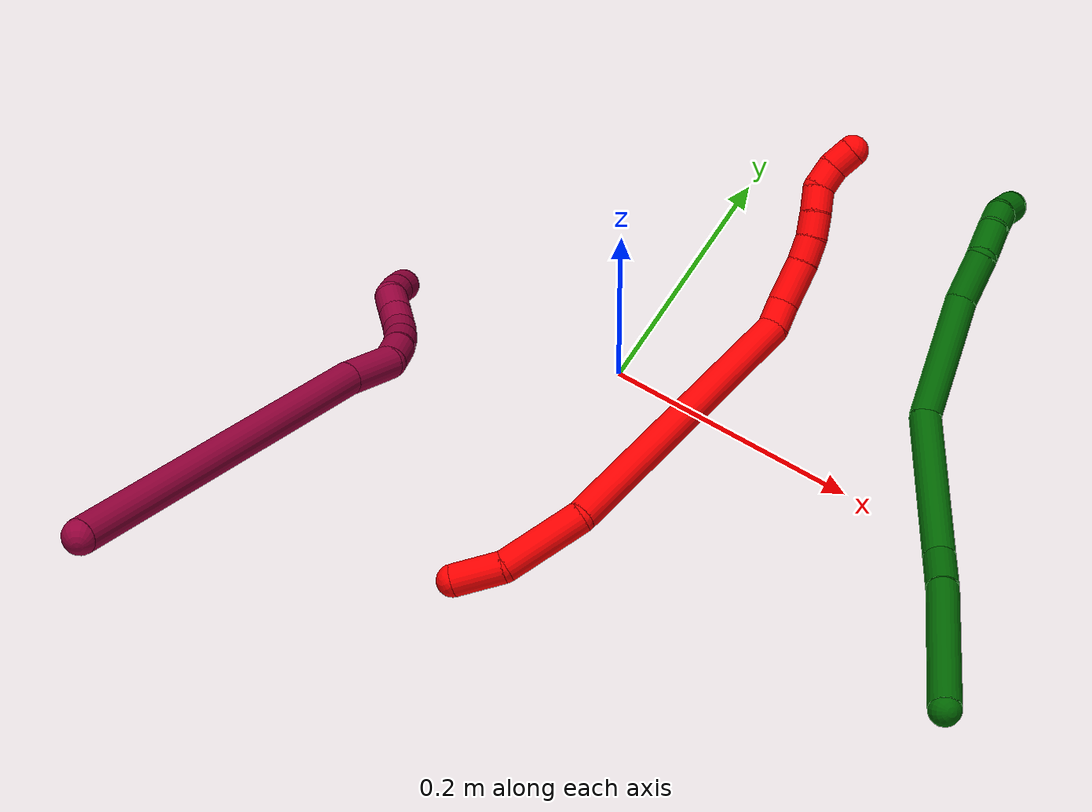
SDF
<sdf version="1.7">
 <world name="default">
  <model name="2">
   <static>0</static>
   <link name="2">
    <collision name="collision-cylinder-e_1_1_4">
     <pose>-0.013801 0.012202 0.007673 -1.00943 -0.763689 0.4366</pose>
     <geometry><cylinder><radius>0.0125</radius><length>0.039911</length></cylinder></geometry>
     <surface>
      <friction><ode><mu>1.16</mu><mu2>1.16</mu2><slip1>0</slip1><slip2>0</slip2></ode></friction>
      <contact><ode><kp>1e+06</kp><kd>1</kd><max_vel>0</max_vel><min_depth>0.001</min_depth></ode></contact>
     </surface>
    </collision>
    <visual name="visual-cylinder-e_1_1_4">
     <pose>-0.013801 0.012202 0.007673 -1.00943 -0.763689 0.4366</pose>
     <geometry><cylinder><radius>0.0125</radius><length>0.039911</length></cylinder></geometry>
     <material><ambient>1 0 0 1</ambient></material>
    </visual>
    <collision name="collision-cylinder-e_2_4_5">
     <pose>-0.04018 0.052833 0.028606 -1.13438 -0.381315 0.24466</pose>
     <geometry><cylinder><radius>0.0125</radius><length>0.067595</length></cylinder></geometry>
     <surface>
      <friction><ode><mu>1.16</mu><mu2>1.16</mu2><slip1>0</slip1><slip2>0</slip2></ode></friction>
      <contact><ode><kp>1e+06</kp><kd>1</kd><max_vel>0</max_vel><min_depth>0.001</min_depth></ode></contact>
     </surface>
    </collision>
    <visual name="visual-cylinder-e_2_4_5">
     <pose>-0.04018 0.052833 0.028606 -1.13438 -0.381315 0.24466</pose>
     <geometry><cylinder><radius>0.0125</radius><length>0.067595</length></cylinder></geometry>
     <material><ambient>1 0 0 1</ambient></material>
    </visual>
    <collision name="collision-cylinder-e_3_5_6">
     <pose>-0.051136 0.181959 0.100742 -1.04171 0.0139 -0.007975</pose>
     <geometry><cylinder><radius>0.0125</radius><length>0.233314</length></cylinder></geometry>
     <surface>
      <friction><ode><mu>1.16</mu><mu2>1.16</mu2><slip1>0</slip1><slip2>0</slip2></ode></friction>
      <contact><ode><kp>1e+06</kp><kd>1</kd><max_vel>0</max_vel><min_depth>0.001</min_depth></ode></contact>
     </surface>
    </collision>
    <visual name="visual-cylinder-e_3_5_6">
     <pose>-0.051136 0.181959 0.100742 -1.04171 0.0139 -0.007975</pose>
     <geometry><cylinder><radius>0.0125</radius><length>0.233314</length></cylinder></geometry>
     <material><ambient>1 0 0 1</ambient></material>
    </visual>
    <collision name="collision-cylinder-e_4_6_7">
     <pose>-0.047863 0.293553 0.161265 -1.42082 0.148724 -0.128</pose>
     <geometry><cylinder><radius>0.0125</radius><length>0.022288</length></cylinder></geometry>
     <surface>
      <friction><ode><mu>1.16</mu><mu2>1.16</mu2><slip1>0</slip1><slip2>0</slip2></ode></friction>
      <contact><ode><kp>1e+06</kp><kd>1</kd><max_vel>0</max_vel><min_depth>0.001</min_depth></ode></contact>
     </surface>
    </collision>
    <visual name="visual-cylinder-e_4_6_7">
     <pose>-0.047863 0.293553 0.161265 -1.42082 0.148724 -0.128</pose>
     <geometry><cylinder><radius>0.0125</radius><length>0.022288</length></cylinder></geometry>
     <material><ambient>1 0 0 1</ambient></material>
    </visual>
    <collision name="collision-cylinder-e_5_7_8">
     <pose>-0.047019 0.322382 0.162849 -1.57427 -0.04498 0.045136</pose>
     <geometry><cylinder><radius>0.0125</radius><length>0.035899</length></cylinder></geometry>
     <surface>
      <friction><ode><mu>1.16</mu><mu2>1.16</mu2><slip1>0</slip1><slip2>0</slip2></ode></friction>
      <contact><ode><kp>1e+06</kp><kd>1</kd><max_vel>0</max_vel><min_depth>0.001</min_depth></ode></contact>
     </surface>
    </collision>
    <visual name="visual-cylinder-e_5_7_8">
     <pose>-0.047019 0.322382 0.162849 -1.57427 -0.04498 0.045136</pose>
     <geometry><cylinder><radius>0.0125</radius><length>0.035899</length></cylinder></geometry>
     <material><ambient>1 0 0 1</ambient></material>
    </visual>
    <collision name="collision-cylinder-e_6_8_9">
     <pose>-0.047787 0.350533 0.161699 -1.67684 0.003784 -0.004208</pose>
     <geometry><cylinder><radius>0.0125</radius><length>0.020555</length></cylinder></geometry>
     <surface>
      <friction><ode><mu>1.16</mu><mu2>1.16</mu2><slip1>0</slip1><slip2>0</slip2></ode></friction>
      <contact><ode><kp>1e+06</kp><kd>1</kd><max_vel>0</max_vel><min_depth>0.001</min_depth></ode></contact>
     </surface>
    </collision>
    <visual name="visual-cylinder-e_6_8_9">
     <pose>-0.047787 0.350533 0.161699 -1.67684 0.003784 -0.004208</pose>
     <geometry><cylinder><radius>0.0125</radius><length>0.020555</length></cylinder></geometry>
     <material><ambient>1 0 0 1</ambient></material>
    </visual>
    <collision name="collision-cylinder-e_7_9_10">
     <pose>-0.046275 0.370437 0.15859 -1.7766 0.147865 -0.181751</pose>
     <geometry><cylinder><radius>0.0125</radius><length>0.020004</length></cylinder></geometry>
     <surface>
      <friction><ode><mu>1.16</mu><mu2>1.16</mu2><slip1>0</slip1><slip2>0</slip2></ode></friction>
      <contact><ode><kp>1e+06</kp><kd>1</kd><max_vel>0</max_vel><min_depth>0.001</min_depth></ode></contact>
     </surface>
    </collision>
    <visual name="visual-cylinder-e_7_9_10">
     <pose>-0.046275 0.370437 0.15859 -1.7766 0.147865 -0.181751</pose>
     <geometry><cylinder><radius>0.0125</radius><length>0.020004</length></cylinder></geometry>
     <material><ambient>1 0 0 1</ambient></material>
    </visual>
    <collision name="collision-cylinder-e_8_10_11">
     <pose>-0.042381 0.389764 0.154961 -1.736 0.242659 -0.285915</pose>
     <geometry><cylinder><radius>0.0125</radius><length>0.020142</length></cylinder></geometry>
     <surface>
      <friction><ode><mu>1.16</mu><mu2>1.16</mu2><slip1>0</slip1><slip2>0</slip2></ode></friction>
      <contact><ode><kp>1e+06</kp><kd>1</kd><max_vel>0</max_vel><min_depth>0.001</min_depth></ode></contact>
     </surface>
    </collision>
    <visual name="visual-cylinder-e_8_10_11">
     <pose>-0.042381 0.389764 0.154961 -1.736 0.242659 -0.285915</pose>
     <geometry><cylinder><radius>0.0125</radius><length>0.020142</length></cylinder></geometry>
     <material><ambient>1 0 0 1</ambient></material>
    </visual>
    <collision name="collision-cylinder-e_9_11_12">
     <pose>-0.041295 0.409377 0.15461 -1.44535 -0.131998 0.116436</pose>
     <geometry><cylinder><radius>0.0125</radius><length>0.020275</length></cylinder></geometry>
     <surface>
      <friction><ode><mu>1.16</mu><mu2>1.16</mu2><slip1>0</slip1><slip2>0</slip2></ode></friction>
      <contact><ode><kp>1e+06</kp><kd>1</kd><max_vel>0</max_vel><min_depth>0.001</min_depth></ode></contact>
     </surface>
    </collision>
    <visual name="visual-cylinder-e_9_11_12">
     <pose>-0.041295 0.409377 0.15461 -1.44535 -0.131998 0.116436</pose>
     <geometry><cylinder><radius>0.0125</radius><length>0.020275</length></cylinder></geometry>
     <material><ambient>1 0 0 1</ambient></material>
    </visual>
    <collision name="collision-cylinder-e_10_12_2">
     <pose>-0.047313 0.428092 0.157198 -1.41983 -0.48697 0.42065</pose>
     <geometry><cylinder><radius>0.0125</radius><length>0.020017</length></cylinder></geometry>
     <surface>
      <friction><ode><mu>1.16</mu><mu2>1.16</mu2><slip1>0</slip1><slip2>0</slip2></ode></friction>
      <contact><ode><kp>1e+06</kp><kd>1</kd><max_vel>0</max_vel><min_depth>0.001</min_depth></ode></contact>
     </surface>
    </collision>
    <visual name="visual-cylinder-e_10_12_2">
     <pose>-0.047313 0.428092 0.157198 -1.41983 -0.48697 0.42065</pose>
     <geometry><cylinder><radius>0.0125</radius><length>0.020017</length></cylinder></geometry>
     <material><ambient>1 0 0 1</ambient></material>
    </visual>
    <collision name="collision-sphere-2">
     <pose>-0.051996 0.436836 0.158528 0 -0 0</pose>
     <geometry><sphere><radius>0.0125</radius></sphere></geometry>
     <surface>
      <friction><ode><mu>1.16</mu><mu2>1.16</mu2><slip1>0</slip1><slip2>0</slip2></ode></friction>
      <contact><ode><kp>1e+06</kp><kd>1</kd><max_vel>0</max_vel><min_depth>0.001</min_depth></ode></contact>
     </surface>
    </collision>
    <visual name="visual-sphere-2">
     <pose>-0.051996 0.436836 0.158528 0 -0 0</pose>
     <geometry><sphere><radius>0.0125</radius></sphere></geometry>
     <material><ambient>1 0 0 1</ambient></material>
    </visual>
    <collision name="collision-sphere-12">
     <pose>-0.04263 0.419347 0.155868 0 -0 0</pose>
     <geometry><sphere><radius>0.0125</radius></sphere></geometry>
     <surface>
      <friction><ode><mu>1.16</mu><mu2>1.16</mu2><slip1>0</slip1><slip2>0</slip2></ode></friction>
      <contact><ode><kp>1e+06</kp><kd>1</kd><max_vel>0</max_vel><min_depth>0.001</min_depth></ode></contact>
     </surface>
    </collision>
    <visual name="visual-sphere-12">
     <pose>-0.04263 0.419347 0.155868 0 -0 0</pose>
     <geometry><sphere><radius>0.0125</radius></sphere></geometry>
     <material><ambient>1 0 0 1</ambient></material>
    </visual>
    <collision name="collision-sphere-11">
     <pose>-0.039961 0.399406 0.153353 0 -0 0</pose>
     <geometry><sphere><radius>0.0125</radius></sphere></geometry>
     <surface>
      <friction><ode><mu>1.16</mu><mu2>1.16</mu2><slip1>0</slip1><slip2>0</slip2></ode></friction>
      <contact><ode><kp>1e+06</kp><kd>1</kd><max_vel>0</max_vel><min_depth>0.001</min_depth></ode></contact>
     </surface>
    </collision>
    <visual name="visual-sphere-11">
     <pose>-0.039961 0.399406 0.153353 0 -0 0</pose>
     <geometry><sphere><radius>0.0125</radius></sphere></geometry>
     <material><ambient>1 0 0 1</ambient></material>
    </visual>
    <collision name="collision-sphere-10">
     <pose>-0.044801 0.380121 0.156568 0 -0 0</pose>
     <geometry><sphere><radius>0.0125</radius></sphere></geometry>
     <surface>
      <friction><ode><mu>1.16</mu><mu2>1.16</mu2><slip1>0</slip1><slip2>0</slip2></ode></friction>
      <contact><ode><kp>1e+06</kp><kd>1</kd><max_vel>0</max_vel><min_depth>0.001</min_depth></ode></contact>
     </surface>
    </collision>
    <visual name="visual-sphere-10">
     <pose>-0.044801 0.380121 0.156568 0 -0 0</pose>
     <geometry><sphere><radius>0.0125</radius></sphere></geometry>
     <material><ambient>1 0 0 1</ambient></material>
    </visual>
    <collision name="collision-sphere-9">
     <pose>-0.047748 0.360753 0.160612 0 -0 0</pose>
     <geometry><sphere><radius>0.0125</radius></sphere></geometry>
     <surface>
      <friction><ode><mu>1.16</mu><mu2>1.16</mu2><slip1>0</slip1><slip2>0</slip2></ode></friction>
      <contact><ode><kp>1e+06</kp><kd>1</kd><max_vel>0</max_vel><min_depth>0.001</min_depth></ode></contact>
     </surface>
    </collision>
    <visual name="visual-sphere-9">
     <pose>-0.047748 0.360753 0.160612 0 -0 0</pose>
     <geometry><sphere><radius>0.0125</radius></sphere></geometry>
     <material><ambient>1 0 0 1</ambient></material>
    </visual>
    <collision name="collision-sphere-4">
     <pose>-0.027602 0.024403 0.015346 0 -0 0</pose>
     <geometry><sphere><radius>0.0125</radius></sphere></geometry>
     <surface>
      <friction><ode><mu>1.16</mu><mu2>1.16</mu2><slip1>0</slip1><slip2>0</slip2></ode></friction>
      <contact><ode><kp>1e+06</kp><kd>1</kd><max_vel>0</max_vel><min_depth>0.001</min_depth></ode></contact>
     </surface>
    </collision>
    <visual name="visual-sphere-4">
     <pose>-0.027602 0.024403 0.015346 0 -0 0</pose>
     <geometry><sphere><radius>0.0125</radius></sphere></geometry>
     <material><ambient>1 0 0 1</ambient></material>
    </visual>
    <collision name="collision-sphere-1">
     <geometry><sphere><radius>0.0125</radius></sphere></geometry>
     <surface>
      <friction><ode><mu>1.16</mu><mu2>1.16</mu2><slip1>0</slip1><slip2>0</slip2></ode></friction>
      <contact><ode><kp>1e+06</kp><kd>1</kd><max_vel>0</max_vel><min_depth>0.001</min_depth></ode></contact>
     </surface>
    </collision>
    <visual name="visual-sphere-1">
     <geometry><sphere><radius>0.0125</radius></sphere></geometry>
     <material><ambient>1 0 0 1</ambient></material>
    </visual>
    <collision name="collision-sphere-8">
     <pose>-0.047826 0.340313 0.162787 0 -0 0</pose>
     <geometry><sphere><radius>0.0125</radius></sphere></geometry>
     <surface>
      <friction><ode><mu>1.16</mu><mu2>1.16</mu2><slip1>0</slip1><slip2>0</slip2></ode></friction>
      <contact><ode><kp>1e+06</kp><kd>1</kd><max_vel>0</max_vel><min_depth>0.001</min_depth></ode></contact>
     </surface>
    </collision>
    <visual name="visual-sphere-8">
     <pose>-0.047826 0.340313 0.162787 0 -0 0</pose>
     <geometry><sphere><radius>0.0125</radius></sphere></geometry>
     <material><ambient>1 0 0 1</ambient></material>
    </visual>
    <collision name="collision-sphere-5">
     <pose>-0.052757 0.081263 0.041866 0 -0 0</pose>
     <geometry><sphere><radius>0.0125</radius></sphere></geometry>
     <surface>
      <friction><ode><mu>1.16</mu><mu2>1.16</mu2><slip1>0</slip1><slip2>0</slip2></ode></friction>
      <contact><ode><kp>1e+06</kp><kd>1</kd><max_vel>0</max_vel><min_depth>0.001</min_depth></ode></contact>
     </surface>
    </collision>
    <visual name="visual-sphere-5">
     <pose>-0.052757 0.081263 0.041866 0 -0 0</pose>
     <geometry><sphere><radius>0.0125</radius></sphere></geometry>
     <material><ambient>1 0 0 1</ambient></material>
    </visual>
    <collision name="collision-sphere-6">
     <pose>-0.049514 0.282656 0.159618 0 -0 0</pose>
     <geometry><sphere><radius>0.0125</radius></sphere></geometry>
     <surface>
      <friction><ode><mu>1.16</mu><mu2>1.16</mu2><slip1>0</slip1><slip2>0</slip2></ode></friction>
      <contact><ode><kp>1e+06</kp><kd>1</kd><max_vel>0</max_vel><min_depth>0.001</min_depth></ode></contact>
     </surface>
    </collision>
    <visual name="visual-sphere-6">
     <pose>-0.049514 0.282656 0.159618 0 -0 0</pose>
     <geometry><sphere><radius>0.0125</radius></sphere></geometry>
     <material><ambient>1 0 0 1</ambient></material>
    </visual>
    <collision name="collision-sphere-7">
     <pose>-0.046212 0.30445 0.162912 0 -0 0</pose>
     <geometry><sphere><radius>0.0125</radius></sphere></geometry>
     <surface>
      <friction><ode><mu>1.16</mu><mu2>1.16</mu2><slip1>0</slip1><slip2>0</slip2></ode></friction>
      <contact><ode><kp>1e+06</kp><kd>1</kd><max_vel>0</max_vel><min_depth>0.001</min_depth></ode></contact>
     </surface>
    </collision>
    <visual name="visual-sphere-7">
     <pose>-0.046212 0.30445 0.162912 0 -0 0</pose>
     <geometry><sphere><radius>0.0125</radius></sphere></geometry>
     <material><ambient>1 0 0 1</ambient></material>
    </visual>
    <inertial>
     <pose>-0.044996 0.207926 0.102167 0 -0 0</pose>
     <mass>0.5</mass>
     <inertia>
      <ixx>0.001107</ixx>
      <ixy>0</ixy>
      <ixz>0</ixz>
      <iyy>0.000592</iyy>
      <iyz>0</iyz>
      <izz>-0.00095</izz>
     </inertia>
    </inertial>
   </link>
   <pose>-0.007768 -0.224216 0.023149 2.75423 0.50948 3.05081</pose>
  </model>
  <model name="6">
   <static>0</static>
   <link name="6">
    <collision name="collision-cylinder-e_1_1_4">
     <pose>-0.029209 0.027346 -0.044659 -2.59216 -0.508797 1.49033</pose>
     <geometry><cylinder><radius>0.0125</radius><length>0.119923</length></cylinder></geometry>
     <surface>
      <friction><ode><mu>1.16</mu><mu2>1.16</mu2><slip1>0</slip1><slip2>0</slip2></ode></friction>
      <contact><ode><kp>1e+06</kp><kd>1</kd><max_vel>0</max_vel><min_depth>0.001</min_depth></ode></contact>
     </surface>
    </collision>
    <visual name="visual-cylinder-e_1_1_4">
     <pose>-0.029209 0.027346 -0.044659 -2.59216 -0.508797 1.49033</pose>
     <geometry><cylinder><radius>0.0125</radius><length>0.119923</length></cylinder></geometry>
     <material><ambient>0 0.392157 0.003922 1</ambient></material>
    </visual>
    <collision name="collision-cylinder-e_2_4_5">
     <pose>-0.065924 0.062422 -0.104404 -2.66808 -0.416881 1.4395</pose>
     <geometry><cylinder><radius>0.0125</radius><length>0.037078</length></cylinder></geometry>
     <surface>
      <friction><ode><mu>1.16</mu><mu2>1.16</mu2><slip1>0</slip1><slip2>0</slip2></ode></friction>
      <contact><ode><kp>1e+06</kp><kd>1</kd><max_vel>0</max_vel><min_depth>0.001</min_depth></ode></contact>
     </surface>
    </collision>
    <visual name="visual-cylinder-e_2_4_5">
     <pose>-0.065924 0.062422 -0.104404 -2.66808 -0.416881 1.4395</pose>
     <geometry><cylinder><radius>0.0125</radius><length>0.037078</length></cylinder></geometry>
     <material><ambient>0 0.392157 0.003922 1</ambient></material>
    </visual>
    <collision name="collision-cylinder-e_3_5_6">
     <pose>-0.117323 0.093311 -0.160442 -2.62691 -0.750721 1.9639</pose>
     <geometry><cylinder><radius>0.0125</radius><length>0.128685</length></cylinder></geometry>
     <surface>
      <friction><ode><mu>1.16</mu><mu2>1.16</mu2><slip1>0</slip1><slip2>0</slip2></ode></friction>
      <contact><ode><kp>1e+06</kp><kd>1</kd><max_vel>0</max_vel><min_depth>0.001</min_depth></ode></contact>
     </surface>
    </collision>
    <visual name="visual-cylinder-e_3_5_6">
     <pose>-0.117323 0.093311 -0.160442 -2.62691 -0.750721 1.9639</pose>
     <geometry><cylinder><radius>0.0125</radius><length>0.128685</length></cylinder></geometry>
     <material><ambient>0 0.392157 0.003922 1</ambient></material>
    </visual>
    <collision name="collision-cylinder-e_4_6_7">
     <pose>-0.198447 0.146947 -0.21629 -2.02542 -0.831879 1.23154</pose>
     <geometry><cylinder><radius>0.0125</radius><length>0.100735</length></cylinder></geometry>
     <surface>
      <friction><ode><mu>1.16</mu><mu2>1.16</mu2><slip1>0</slip1><slip2>0</slip2></ode></friction>
      <contact><ode><kp>1e+06</kp><kd>1</kd><max_vel>0</max_vel><min_depth>0.001</min_depth></ode></contact>
     </surface>
    </collision>
    <visual name="visual-cylinder-e_4_6_7">
     <pose>-0.198447 0.146947 -0.21629 -2.02542 -0.831879 1.23154</pose>
     <geometry><cylinder><radius>0.0125</radius><length>0.100735</length></cylinder></geometry>
     <material><ambient>0 0.392157 0.003922 1</ambient></material>
    </visual>
    <collision name="collision-cylinder-e_5_7_8">
     <pose>-0.250104 0.190193 -0.232665 -1.68612 -0.84288 0.932458</pose>
     <geometry><cylinder><radius>0.0125</radius><length>0.038645</length></cylinder></geometry>
     <surface>
      <friction><ode><mu>1.16</mu><mu2>1.16</mu2><slip1>0</slip1><slip2>0</slip2></ode></friction>
      <contact><ode><kp>1e+06</kp><kd>1</kd><max_vel>0</max_vel><min_depth>0.001</min_depth></ode></contact>
     </surface>
    </collision>
    <visual name="visual-cylinder-e_5_7_8">
     <pose>-0.250104 0.190193 -0.232665 -1.68612 -0.84288 0.932458</pose>
     <geometry><cylinder><radius>0.0125</radius><length>0.038645</length></cylinder></geometry>
     <material><ambient>0 0.392157 0.003922 1</ambient></material>
    </visual>
    <collision name="collision-cylinder-e_6_8_9">
     <pose>-0.273093 0.213088 -0.240883 -2.15807 -0.613461 1.06798</pose>
     <geometry><cylinder><radius>0.0125</radius><length>0.029749</length></cylinder></geometry>
     <surface>
      <friction><ode><mu>1.16</mu><mu2>1.16</mu2><slip1>0</slip1><slip2>0</slip2></ode></friction>
      <contact><ode><kp>1e+06</kp><kd>1</kd><max_vel>0</max_vel><min_depth>0.001</min_depth></ode></contact>
     </surface>
    </collision>
    <visual name="visual-cylinder-e_6_8_9">
     <pose>-0.273093 0.213088 -0.240883 -2.15807 -0.613461 1.06798</pose>
     <geometry><cylinder><radius>0.0125</radius><length>0.029749</length></cylinder></geometry>
     <material><ambient>0 0.392157 0.003922 1</ambient></material>
    </visual>
    <collision name="collision-cylinder-e_7_9_10">
     <pose>-0.285897 0.230858 -0.254457 -2.30025 -0.392166 0.835701</pose>
     <geometry><cylinder><radius>0.0125</radius><length>0.022196</length></cylinder></geometry>
     <surface>
      <friction><ode><mu>1.16</mu><mu2>1.16</mu2><slip1>0</slip1><slip2>0</slip2></ode></friction>
      <contact><ode><kp>1e+06</kp><kd>1</kd><max_vel>0</max_vel><min_depth>0.001</min_depth></ode></contact>
     </surface>
    </collision>
    <visual name="visual-cylinder-e_7_9_10">
     <pose>-0.285897 0.230858 -0.254457 -2.30025 -0.392166 0.835701</pose>
     <geometry><cylinder><radius>0.0125</radius><length>0.022196</length></cylinder></geometry>
     <material><ambient>0 0.392157 0.003922 1</ambient></material>
    </visual>
    <collision name="collision-cylinder-e_8_10_2">
     <pose>-0.290804 0.247376 -0.268571 -2.25792 -0.057861 0.122202</pose>
     <geometry><cylinder><radius>0.0125</radius><length>0.02299</length></cylinder></geometry>
     <surface>
      <friction><ode><mu>1.16</mu><mu2>1.16</mu2><slip1>0</slip1><slip2>0</slip2></ode></friction>
      <contact><ode><kp>1e+06</kp><kd>1</kd><max_vel>0</max_vel><min_depth>0.001</min_depth></ode></contact>
     </surface>
    </collision>
    <visual name="visual-cylinder-e_8_10_2">
     <pose>-0.290804 0.247376 -0.268571 -2.25792 -0.057861 0.122202</pose>
     <geometry><cylinder><radius>0.0125</radius><length>0.02299</length></cylinder></geometry>
     <material><ambient>0 0.392157 0.003922 1</ambient></material>
    </visual>
    <collision name="collision-sphere-2">
     <pose>-0.291468 0.256247 -0.27585 0 -0 0</pose>
     <geometry><sphere><radius>0.0125</radius></sphere></geometry>
     <surface>
      <friction><ode><mu>1.16</mu><mu2>1.16</mu2><slip1>0</slip1><slip2>0</slip2></ode></friction>
      <contact><ode><kp>1e+06</kp><kd>1</kd><max_vel>0</max_vel><min_depth>0.001</min_depth></ode></contact>
     </surface>
    </collision>
    <visual name="visual-sphere-2">
     <pose>-0.291468 0.256247 -0.27585 0 -0 0</pose>
     <geometry><sphere><radius>0.0125</radius></sphere></geometry>
     <material><ambient>0 0.392157 0.003922 1</ambient></material>
    </visual>
    <collision name="collision-sphere-10">
     <pose>-0.290139 0.238504 -0.261292 0 -0 0</pose>
     <geometry><sphere><radius>0.0125</radius></sphere></geometry>
     <surface>
      <friction><ode><mu>1.16</mu><mu2>1.16</mu2><slip1>0</slip1><slip2>0</slip2></ode></friction>
      <contact><ode><kp>1e+06</kp><kd>1</kd><max_vel>0</max_vel><min_depth>0.001</min_depth></ode></contact>
     </surface>
    </collision>
    <visual name="visual-sphere-10">
     <pose>-0.290139 0.238504 -0.261292 0 -0 0</pose>
     <geometry><sphere><radius>0.0125</radius></sphere></geometry>
     <material><ambient>0 0.392157 0.003922 1</ambient></material>
    </visual>
    <collision name="collision-sphere-9">
     <pose>-0.281656 0.223212 -0.247622 0 -0 0</pose>
     <geometry><sphere><radius>0.0125</radius></sphere></geometry>
     <surface>
      <friction><ode><mu>1.16</mu><mu2>1.16</mu2><slip1>0</slip1><slip2>0</slip2></ode></friction>
      <contact><ode><kp>1e+06</kp><kd>1</kd><max_vel>0</max_vel><min_depth>0.001</min_depth></ode></contact>
     </surface>
    </collision>
    <visual name="visual-sphere-9">
     <pose>-0.281656 0.223212 -0.247622 0 -0 0</pose>
     <geometry><sphere><radius>0.0125</radius></sphere></geometry>
     <material><ambient>0 0.392157 0.003922 1</ambient></material>
    </visual>
    <collision name="collision-sphere-4">
     <pose>-0.058418 0.054692 -0.089318 0 -0 0</pose>
     <geometry><sphere><radius>0.0125</radius></sphere></geometry>
     <surface>
      <friction><ode><mu>1.16</mu><mu2>1.16</mu2><slip1>0</slip1><slip2>0</slip2></ode></friction>
      <contact><ode><kp>1e+06</kp><kd>1</kd><max_vel>0</max_vel><min_depth>0.001</min_depth></ode></contact>
     </surface>
    </collision>
    <visual name="visual-sphere-4">
     <pose>-0.058418 0.054692 -0.089318 0 -0 0</pose>
     <geometry><sphere><radius>0.0125</radius></sphere></geometry>
     <material><ambient>0 0.392157 0.003922 1</ambient></material>
    </visual>
    <collision name="collision-sphere-1">
     <geometry><sphere><radius>0.0125</radius></sphere></geometry>
     <surface>
      <friction><ode><mu>1.16</mu><mu2>1.16</mu2><slip1>0</slip1><slip2>0</slip2></ode></friction>
      <contact><ode><kp>1e+06</kp><kd>1</kd><max_vel>0</max_vel><min_depth>0.001</min_depth></ode></contact>
     </surface>
    </collision>
    <visual name="visual-sphere-1">
     <geometry><sphere><radius>0.0125</radius></sphere></geometry>
     <material><ambient>0 0.392157 0.003922 1</ambient></material>
    </visual>
    <collision name="collision-sphere-8">
     <pose>-0.26453 0.202964 -0.234144 0 -0 0</pose>
     <geometry><sphere><radius>0.0125</radius></sphere></geometry>
     <surface>
      <friction><ode><mu>1.16</mu><mu2>1.16</mu2><slip1>0</slip1><slip2>0</slip2></ode></friction>
      <contact><ode><kp>1e+06</kp><kd>1</kd><max_vel>0</max_vel><min_depth>0.001</min_depth></ode></contact>
     </surface>
    </collision>
    <visual name="visual-sphere-8">
     <pose>-0.26453 0.202964 -0.234144 0 -0 0</pose>
     <geometry><sphere><radius>0.0125</radius></sphere></geometry>
     <material><ambient>0 0.392157 0.003922 1</ambient></material>
    </visual>
    <collision name="collision-sphere-5">
     <pose>-0.073431 0.070152 -0.11949 0 -0 0</pose>
     <geometry><sphere><radius>0.0125</radius></sphere></geometry>
     <surface>
      <friction><ode><mu>1.16</mu><mu2>1.16</mu2><slip1>0</slip1><slip2>0</slip2></ode></friction>
      <contact><ode><kp>1e+06</kp><kd>1</kd><max_vel>0</max_vel><min_depth>0.001</min_depth></ode></contact>
     </surface>
    </collision>
    <visual name="visual-sphere-5">
     <pose>-0.073431 0.070152 -0.11949 0 -0 0</pose>
     <geometry><sphere><radius>0.0125</radius></sphere></geometry>
     <material><ambient>0 0.392157 0.003922 1</ambient></material>
    </visual>
    <collision name="collision-sphere-6">
     <pose>-0.161215 0.11647 -0.201394 0 -0 0</pose>
     <geometry><sphere><radius>0.0125</radius></sphere></geometry>
     <surface>
      <friction><ode><mu>1.16</mu><mu2>1.16</mu2><slip1>0</slip1><slip2>0</slip2></ode></friction>
      <contact><ode><kp>1e+06</kp><kd>1</kd><max_vel>0</max_vel><min_depth>0.001</min_depth></ode></contact>
     </surface>
    </collision>
    <visual name="visual-sphere-6">
     <pose>-0.161215 0.11647 -0.201394 0 -0 0</pose>
     <geometry><sphere><radius>0.0125</radius></sphere></geometry>
     <material><ambient>0 0.392157 0.003922 1</ambient></material>
    </visual>
    <collision name="collision-sphere-7">
     <pose>-0.235679 0.177423 -0.231186 0 -0 0</pose>
     <geometry><sphere><radius>0.0125</radius></sphere></geometry>
     <surface>
      <friction><ode><mu>1.16</mu><mu2>1.16</mu2><slip1>0</slip1><slip2>0</slip2></ode></friction>
      <contact><ode><kp>1e+06</kp><kd>1</kd><max_vel>0</max_vel><min_depth>0.001</min_depth></ode></contact>
     </surface>
    </collision>
    <visual name="visual-sphere-7">
     <pose>-0.235679 0.177423 -0.231186 0 -0 0</pose>
     <geometry><sphere><radius>0.0125</radius></sphere></geometry>
     <material><ambient>0 0.392157 0.003922 1</ambient></material>
    </visual>
    <inertial>
     <pose>-0.143712 0.113809 -0.159281 0 -0 0</pose>
     <mass>0.5</mass>
     <inertia>
      <ixx>0.000286</ixx>
      <ixy>0</ixy>
      <ixz>0</ixz>
      <iyy>0.000532</iyy>
      <iyz>0</iyz>
      <izz>5.2e-05</izz>
     </inertia>
    </inertial>
   </link>
   <pose>0.357068 -0.152274 0.089858 -0.189283 0.648338 -0.768599</pose>
  </model>
  <model name="8">
   <static>0</static>
   <link name="8">
    <collision name="collision-cylinder-e_1_1_4">
     <pose>-0.07729 0.006214 -0.123067 -3.09114 -0.560204 2.96663</pose>
     <geometry><cylinder><radius>0.0125</radius><length>0.290914</length></cylinder></geometry>
     <surface>
      <friction><ode><mu>1.16</mu><mu2>1.16</mu2><slip1>0</slip1><slip2>0</slip2></ode></friction>
      <contact><ode><kp>1e+06</kp><kd>1</kd><max_vel>0</max_vel><min_depth>0.001</min_depth></ode></contact>
     </surface>
    </collision>
    <visual name="visual-cylinder-e_1_1_4">
     <pose>-0.07729 0.006214 -0.123067 -3.09114 -0.560204 2.96663</pose>
     <geometry><cylinder><radius>0.0125</radius><length>0.290914</length></cylinder></geometry>
     <material><ambient>0.584314 0 0.227451 1</ambient></material>
    </visual>
    <collision name="collision-cylinder-e_2_4_5">
     <pose>-0.168913 0.013674 -0.263269 -3.06899 -0.695279 2.94179</pose>
     <geometry><cylinder><radius>0.0125</radius><length>0.04475</length></cylinder></geometry>
     <surface>
      <friction><ode><mu>1.16</mu><mu2>1.16</mu2><slip1>0</slip1><slip2>0</slip2></ode></friction>
      <contact><ode><kp>1e+06</kp><kd>1</kd><max_vel>0</max_vel><min_depth>0.001</min_depth></ode></contact>
     </surface>
    </collision>
    <visual name="visual-cylinder-e_2_4_5">
     <pose>-0.168913 0.013674 -0.263269 -3.06899 -0.695279 2.94179</pose>
     <geometry><cylinder><radius>0.0125</radius><length>0.04475</length></cylinder></geometry>
     <material><ambient>0.584314 0 0.227451 1</ambient></material>
    </visual>
    <collision name="collision-cylinder-e_3_5_6">
     <pose>-0.185866 0.017042 -0.293685 -2.98316 -0.192388 1.76474</pose>
     <geometry><cylinder><radius>0.0125</radius><length>0.027403</length></cylinder></geometry>
     <surface>
      <friction><ode><mu>1.16</mu><mu2>1.16</mu2><slip1>0</slip1><slip2>0</slip2></ode></friction>
      <contact><ode><kp>1e+06</kp><kd>1</kd><max_vel>0</max_vel><min_depth>0.001</min_depth></ode></contact>
     </surface>
    </collision>
    <visual name="visual-cylinder-e_3_5_6">
     <pose>-0.185866 0.017042 -0.293685 -2.98316 -0.192388 1.76474</pose>
     <geometry><cylinder><radius>0.0125</radius><length>0.027403</length></cylinder></geometry>
     <material><ambient>0.584314 0 0.227451 1</ambient></material>
    </visual>
    <collision name="collision-cylinder-e_4_6_7">
     <pose>-0.189294 0.023174 -0.319087 -2.82214 -0.063208 0.387561</pose>
     <geometry><cylinder><radius>0.0125</radius><length>0.025587</length></cylinder></geometry>
     <surface>
      <friction><ode><mu>1.16</mu><mu2>1.16</mu2><slip1>0</slip1><slip2>0</slip2></ode></friction>
      <contact><ode><kp>1e+06</kp><kd>1</kd><max_vel>0</max_vel><min_depth>0.001</min_depth></ode></contact>
     </surface>
    </collision>
    <visual name="visual-cylinder-e_4_6_7">
     <pose>-0.189294 0.023174 -0.319087 -2.82214 -0.063208 0.387561</pose>
     <geometry><cylinder><radius>0.0125</radius><length>0.025587</length></cylinder></geometry>
     <material><ambient>0.584314 0 0.227451 1</ambient></material>
    </visual>
    <collision name="collision-cylinder-e_5_7_8">
     <pose>-0.189447 0.030581 -0.342699 -2.85407 0.054628 -0.373079</pose>
     <geometry><cylinder><radius>0.0125</radius><length>0.023998</length></cylinder></geometry>
     <surface>
      <friction><ode><mu>1.16</mu><mu2>1.16</mu2><slip1>0</slip1><slip2>0</slip2></ode></friction>
      <contact><ode><kp>1e+06</kp><kd>1</kd><max_vel>0</max_vel><min_depth>0.001</min_depth></ode></contact>
     </surface>
    </collision>
    <visual name="visual-cylinder-e_5_7_8">
     <pose>-0.189447 0.030581 -0.342699 -2.85407 0.054628 -0.373079</pose>
     <geometry><cylinder><radius>0.0125</radius><length>0.023998</length></cylinder></geometry>
     <material><ambient>0.584314 0 0.227451 1</ambient></material>
    </visual>
    <collision name="collision-cylinder-e_6_8_9">
     <pose>-0.186651 0.034852 -0.364823 -3.05961 0.197996 -2.35841</pose>
     <geometry><cylinder><radius>0.0125</radius><length>0.021768</length></cylinder></geometry>
     <surface>
      <friction><ode><mu>1.16</mu><mu2>1.16</mu2><slip1>0</slip1><slip2>0</slip2></ode></friction>
      <contact><ode><kp>1e+06</kp><kd>1</kd><max_vel>0</max_vel><min_depth>0.001</min_depth></ode></contact>
     </surface>
    </collision>
    <visual name="visual-cylinder-e_6_8_9">
     <pose>-0.186651 0.034852 -0.364823 -3.05961 0.197996 -2.35841</pose>
     <geometry><cylinder><radius>0.0125</radius><length>0.021768</length></cylinder></geometry>
     <material><ambient>0.584314 0 0.227451 1</ambient></material>
    </visual>
    <collision name="collision-cylinder-e_7_9_10">
     <pose>-0.18183 0.035572 -0.386328 3.12743 0.241756 3.02509</pose>
     <geometry><cylinder><radius>0.0125</radius><length>0.022392</length></cylinder></geometry>
     <surface>
      <friction><ode><mu>1.16</mu><mu2>1.16</mu2><slip1>0</slip1><slip2>0</slip2></ode></friction>
      <contact><ode><kp>1e+06</kp><kd>1</kd><max_vel>0</max_vel><min_depth>0.001</min_depth></ode></contact>
     </surface>
    </collision>
    <visual name="visual-cylinder-e_7_9_10">
     <pose>-0.18183 0.035572 -0.386328 3.12743 0.241756 3.02509</pose>
     <geometry><cylinder><radius>0.0125</radius><length>0.022392</length></cylinder></geometry>
     <material><ambient>0.584314 0 0.227451 1</ambient></material>
    </visual>
    <collision name="collision-cylinder-e_8_10_11">
     <pose>-0.18118 0.038626 -0.407803 -2.84787 -0.181327 1.10214</pose>
     <geometry><cylinder><radius>0.0125</radius><length>0.022528</length></cylinder></geometry>
     <surface>
      <friction><ode><mu>1.16</mu><mu2>1.16</mu2><slip1>0</slip1><slip2>0</slip2></ode></friction>
      <contact><ode><kp>1e+06</kp><kd>1</kd><max_vel>0</max_vel><min_depth>0.001</min_depth></ode></contact>
     </surface>
    </collision>
    <visual name="visual-cylinder-e_8_10_11">
     <pose>-0.18118 0.038626 -0.407803 -2.84787 -0.181327 1.10214</pose>
     <geometry><cylinder><radius>0.0125</radius><length>0.022528</length></cylinder></geometry>
     <material><ambient>0.584314 0 0.227451 1</ambient></material>
    </visual>
    <collision name="collision-cylinder-e_9_11_2">
     <pose>-0.185855 0.045243 -0.427794 -2.79315 -0.258769 1.27317</pose>
     <geometry><cylinder><radius>0.0125</radius><length>0.02066</length></cylinder></geometry>
     <surface>
      <friction><ode><mu>1.16</mu><mu2>1.16</mu2><slip1>0</slip1><slip2>0</slip2></ode></friction>
      <contact><ode><kp>1e+06</kp><kd>1</kd><max_vel>0</max_vel><min_depth>0.001</min_depth></ode></contact>
     </surface>
    </collision>
    <visual name="visual-cylinder-e_9_11_2">
     <pose>-0.185855 0.045243 -0.427794 -2.79315 -0.258769 1.27317</pose>
     <geometry><cylinder><radius>0.0125</radius><length>0.02066</length></cylinder></geometry>
     <material><ambient>0.584314 0 0.227451 1</ambient></material>
    </visual>
    <collision name="collision-sphere-2">
     <pose>-0.188499 0.048653 -0.43718 0 -0 0</pose>
     <geometry><sphere><radius>0.0125</radius></sphere></geometry>
     <surface>
      <friction><ode><mu>1.16</mu><mu2>1.16</mu2><slip1>0</slip1><slip2>0</slip2></ode></friction>
      <contact><ode><kp>1e+06</kp><kd>1</kd><max_vel>0</max_vel><min_depth>0.001</min_depth></ode></contact>
     </surface>
    </collision>
    <visual name="visual-sphere-2">
     <pose>-0.188499 0.048653 -0.43718 0 -0 0</pose>
     <geometry><sphere><radius>0.0125</radius></sphere></geometry>
     <material><ambient>0.584314 0 0.227451 1</ambient></material>
    </visual>
    <collision name="collision-sphere-11">
     <pose>-0.183212 0.041834 -0.418408 0 -0 0</pose>
     <geometry><sphere><radius>0.0125</radius></sphere></geometry>
     <surface>
      <friction><ode><mu>1.16</mu><mu2>1.16</mu2><slip1>0</slip1><slip2>0</slip2></ode></friction>
      <contact><ode><kp>1e+06</kp><kd>1</kd><max_vel>0</max_vel><min_depth>0.001</min_depth></ode></contact>
     </surface>
    </collision>
    <visual name="visual-sphere-11">
     <pose>-0.183212 0.041834 -0.418408 0 -0 0</pose>
     <geometry><sphere><radius>0.0125</radius></sphere></geometry>
     <material><ambient>0.584314 0 0.227451 1</ambient></material>
    </visual>
    <collision name="collision-sphere-10">
     <pose>-0.179149 0.035418 -0.397198 0 -0 0</pose>
     <geometry><sphere><radius>0.0125</radius></sphere></geometry>
     <surface>
      <friction><ode><mu>1.16</mu><mu2>1.16</mu2><slip1>0</slip1><slip2>0</slip2></ode></friction>
      <contact><ode><kp>1e+06</kp><kd>1</kd><max_vel>0</max_vel><min_depth>0.001</min_depth></ode></contact>
     </surface>
    </collision>
    <visual name="visual-sphere-10">
     <pose>-0.179149 0.035418 -0.397198 0 -0 0</pose>
     <geometry><sphere><radius>0.0125</radius></sphere></geometry>
     <material><ambient>0.584314 0 0.227451 1</ambient></material>
    </visual>
    <collision name="collision-sphere-9">
     <pose>-0.18451 0.035726 -0.375459 0 -0 0</pose>
     <geometry><sphere><radius>0.0125</radius></sphere></geometry>
     <surface>
      <friction><ode><mu>1.16</mu><mu2>1.16</mu2><slip1>0</slip1><slip2>0</slip2></ode></friction>
      <contact><ode><kp>1e+06</kp><kd>1</kd><max_vel>0</max_vel><min_depth>0.001</min_depth></ode></contact>
     </surface>
    </collision>
    <visual name="visual-sphere-9">
     <pose>-0.18451 0.035726 -0.375459 0 -0 0</pose>
     <geometry><sphere><radius>0.0125</radius></sphere></geometry>
     <material><ambient>0.584314 0 0.227451 1</ambient></material>
    </visual>
    <collision name="collision-sphere-4">
     <pose>-0.15458 0.012428 -0.246133 0 -0 0</pose>
     <geometry><sphere><radius>0.0125</radius></sphere></geometry>
     <surface>
      <friction><ode><mu>1.16</mu><mu2>1.16</mu2><slip1>0</slip1><slip2>0</slip2></ode></friction>
      <contact><ode><kp>1e+06</kp><kd>1</kd><max_vel>0</max_vel><min_depth>0.001</min_depth></ode></contact>
     </surface>
    </collision>
    <visual name="visual-sphere-4">
     <pose>-0.15458 0.012428 -0.246133 0 -0 0</pose>
     <geometry><sphere><radius>0.0125</radius></sphere></geometry>
     <material><ambient>0.584314 0 0.227451 1</ambient></material>
    </visual>
    <collision name="collision-sphere-1">
     <geometry><sphere><radius>0.0125</radius></sphere></geometry>
     <surface>
      <friction><ode><mu>1.16</mu><mu2>1.16</mu2><slip1>0</slip1><slip2>0</slip2></ode></friction>
      <contact><ode><kp>1e+06</kp><kd>1</kd><max_vel>0</max_vel><min_depth>0.001</min_depth></ode></contact>
     </surface>
    </collision>
    <visual name="visual-sphere-1">
     <geometry><sphere><radius>0.0125</radius></sphere></geometry>
     <material><ambient>0.584314 0 0.227451 1</ambient></material>
    </visual>
    <collision name="collision-sphere-8">
     <pose>-0.188792 0.033978 -0.354188 0 -0 0</pose>
     <geometry><sphere><radius>0.0125</radius></sphere></geometry>
     <surface>
      <friction><ode><mu>1.16</mu><mu2>1.16</mu2><slip1>0</slip1><slip2>0</slip2></ode></friction>
      <contact><ode><kp>1e+06</kp><kd>1</kd><max_vel>0</max_vel><min_depth>0.001</min_depth></ode></contact>
     </surface>
    </collision>
    <visual name="visual-sphere-8">
     <pose>-0.188792 0.033978 -0.354188 0 -0 0</pose>
     <geometry><sphere><radius>0.0125</radius></sphere></geometry>
     <material><ambient>0.584314 0 0.227451 1</ambient></material>
    </visual>
    <collision name="collision-sphere-5">
     <pose>-0.183246 0.01492 -0.280405 0 -0 0</pose>
     <geometry><sphere><radius>0.0125</radius></sphere></geometry>
     <surface>
      <friction><ode><mu>1.16</mu><mu2>1.16</mu2><slip1>0</slip1><slip2>0</slip2></ode></friction>
      <contact><ode><kp>1e+06</kp><kd>1</kd><max_vel>0</max_vel><min_depth>0.001</min_depth></ode></contact>
     </surface>
    </collision>
    <visual name="visual-sphere-5">
     <pose>-0.183246 0.01492 -0.280405 0 -0 0</pose>
     <geometry><sphere><radius>0.0125</radius></sphere></geometry>
     <material><ambient>0.584314 0 0.227451 1</ambient></material>
    </visual>
    <collision name="collision-sphere-6">
     <pose>-0.188486 0.019164 -0.306965 0 -0 0</pose>
     <geometry><sphere><radius>0.0125</radius></sphere></geometry>
     <surface>
      <friction><ode><mu>1.16</mu><mu2>1.16</mu2><slip1>0</slip1><slip2>0</slip2></ode></friction>
      <contact><ode><kp>1e+06</kp><kd>1</kd><max_vel>0</max_vel><min_depth>0.001</min_depth></ode></contact>
     </surface>
    </collision>
    <visual name="visual-sphere-6">
     <pose>-0.188486 0.019164 -0.306965 0 -0 0</pose>
     <geometry><sphere><radius>0.0125</radius></sphere></geometry>
     <material><ambient>0.584314 0 0.227451 1</ambient></material>
    </visual>
    <collision name="collision-sphere-7">
     <pose>-0.190102 0.027183 -0.33121 0 -0 0</pose>
     <geometry><sphere><radius>0.0125</radius></sphere></geometry>
     <surface>
      <friction><ode><mu>1.16</mu><mu2>1.16</mu2><slip1>0</slip1><slip2>0</slip2></ode></friction>
      <contact><ode><kp>1e+06</kp><kd>1</kd><max_vel>0</max_vel><min_depth>0.001</min_depth></ode></contact>
     </surface>
    </collision>
    <visual name="visual-sphere-7">
     <pose>-0.190102 0.027183 -0.33121 0 -0 0</pose>
     <geometry><sphere><radius>0.0125</radius></sphere></geometry>
     <material><ambient>0.584314 0 0.227451 1</ambient></material>
    </visual>
    <inertial>
     <pose>-0.121165 0.015147 -0.213274 0 -0 0</pose>
     <mass>0.5</mass>
     <inertia>
      <ixx>-0.00143</ixx>
      <ixy>0</ixy>
      <ixz>0</ixz>
      <iyy>0.002361</iyy>
      <iyz>0</iyz>
      <izz>0.000977</izz>
     </inertia>
    </inertial>
   </link>
   <pose>-0.15323 -0.418234 0.285358 -1.09731 -0.18672 -2.70391</pose>
  </model>
 </world>
</sdf>
